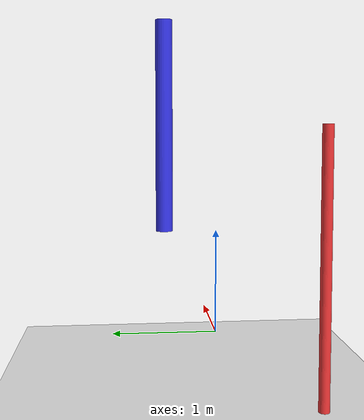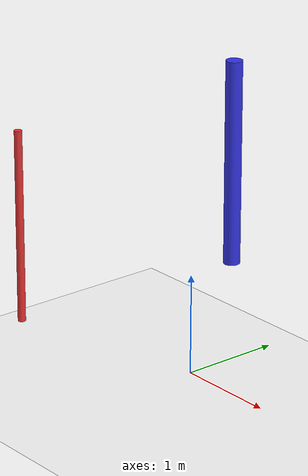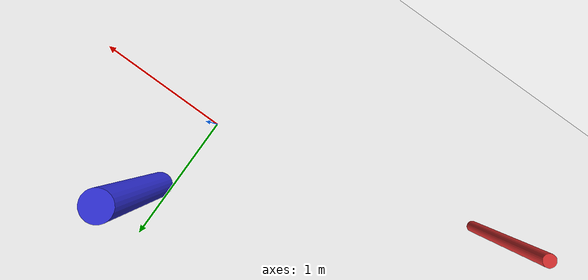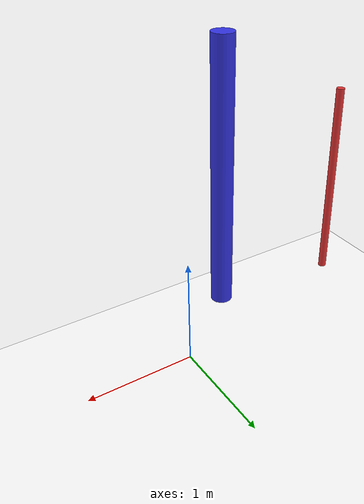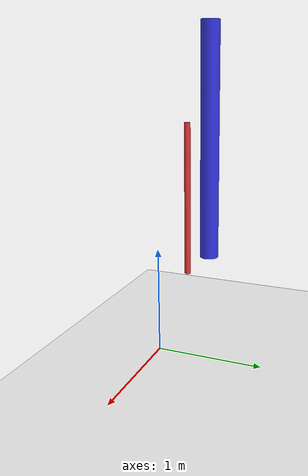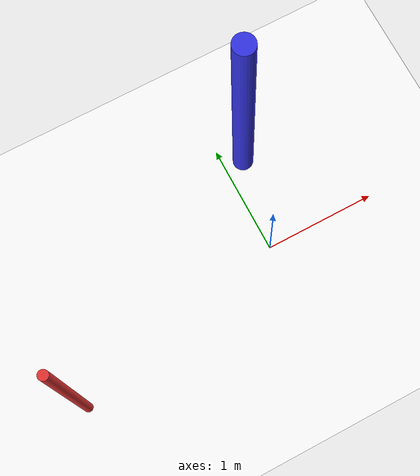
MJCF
<mujoco model="scene8_thin_structure">
  <compiler angle="radian"/>

  <option timestep="0.002" gravity="0 0 -9.81">
    <flag contact="disable"/>
  </option>

  <visual>
    <global offwidth="800" offheight="800"/>
    <quality shadowsize="4096"/>
  </visual>

  <asset>
    <texture name="white_skybox"
             type="skybox"
             builtin="flat"
             width="512"
             height="512"
             rgb1="1 1 1"
             rgb2="1 1 1"/>
    <material name="white_floor" rgba="1 1 1 1" reflectance="0"/>
  </asset>

  <worldbody>
    <light directional="true" pos="0 0 3" dir="0 0 -1" diffuse="0.8 0.8 0.8"/>
    <light directional="true" pos="2 2 3" dir="-0.5 -0.5 -1" diffuse="0.4 0.4 0.4"/>

    <geom name="floor" type="plane" size="5 5 0.1" material="white_floor" pos="0 0 -0.5"/>

    <body name="target" pos="0 0 1.0">
      <site name="target_site" size="0.01" rgba="1 0 0 0"/>
    </body>

    <!-- Moving rod (red, moves left to right) -->
    <body name="rod_moving" pos="-2.0 -0.5 1.0">
      <freejoint/>
      <geom name="rod_moving_geom" type="cylinder" size="0.04 1.0" rgba="0.9 0.2 0.2 1" mass="1"/>
    </body>

    <!-- Rotating rod (blue, spins in place) -->
    <body name="rod_rotating" pos="0 0.5 2.0">
      <freejoint/>
      <geom name="rod_rotating_geom" type="cylinder" size="0.08 1.0" rgba="0.2 0.2 0.9 1" mass="1"/>
    </body>

    <!-- Scaled 1.7x for 800x800 square resolution — moving rod extends ±2.5m from target -->
    <camera name="cam0" pos="5.1 0 2.55" mode="targetbody" target="target" fovy="50"/>
    <camera name="cam1" pos="0 5.1 2.55" mode="targetbody" target="target" fovy="50"/>
    <camera name="cam2" pos="-5.1 0 2.55" mode="targetbody" target="target" fovy="50"/>
    <camera name="cam3" pos="0 -5.1 2.55" mode="targetbody" target="target" fovy="50"/>
    <camera name="cam4" pos="4.25 4.25 4.25" mode="targetbody" target="target" fovy="50"/>
    <camera name="cam5" pos="-4.25 4.25 4.25" mode="targetbody" target="target" fovy="50"/>
    <camera name="cam6" pos="4.25 -4.25 4.25" mode="targetbody" target="target" fovy="50"/>
    <camera name="cam7" pos="-4.25 -4.25 4.25" mode="targetbody" target="target" fovy="50"/>
    <camera name="cam8" pos="3.4 0 1.36" mode="targetbody" target="target" fovy="55"/>
    <camera name="cam9" pos="-3.4 0 1.36" mode="targetbody" target="target" fovy="55"/>
    <camera name="cam10" pos="0 0 6.0" mode="targetbody" target="target" fovy="45"/>
    <camera name="cam11" pos="2.55 2.55 5.1" mode="targetbody" target="target" fovy="45"/>
  </worldbody>
</mujoco>
